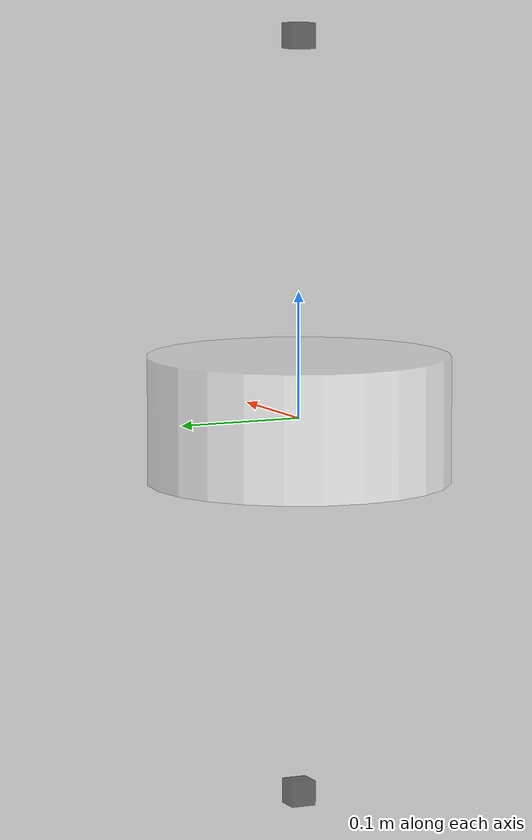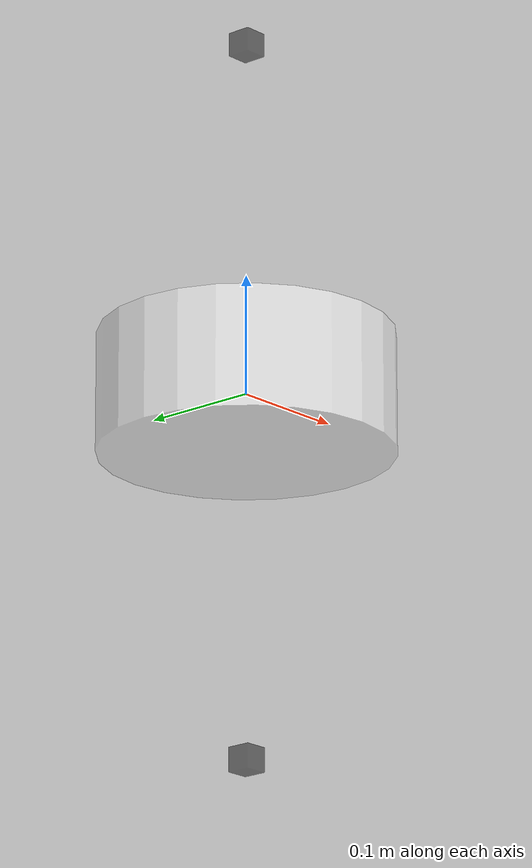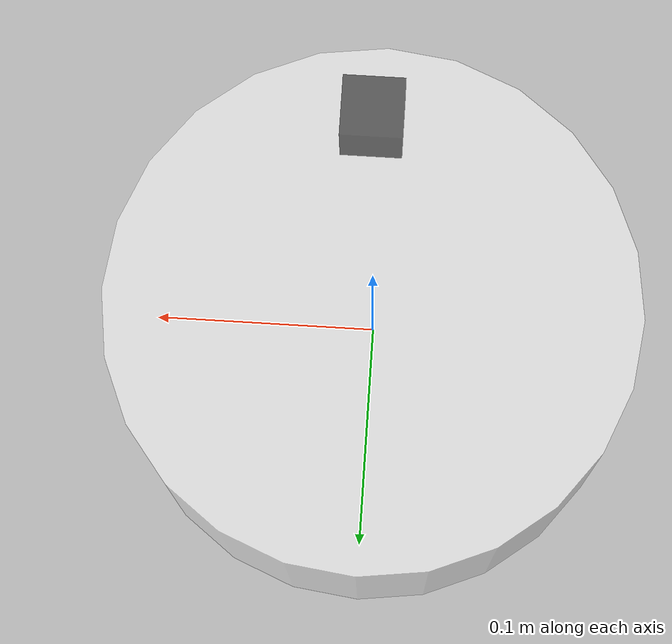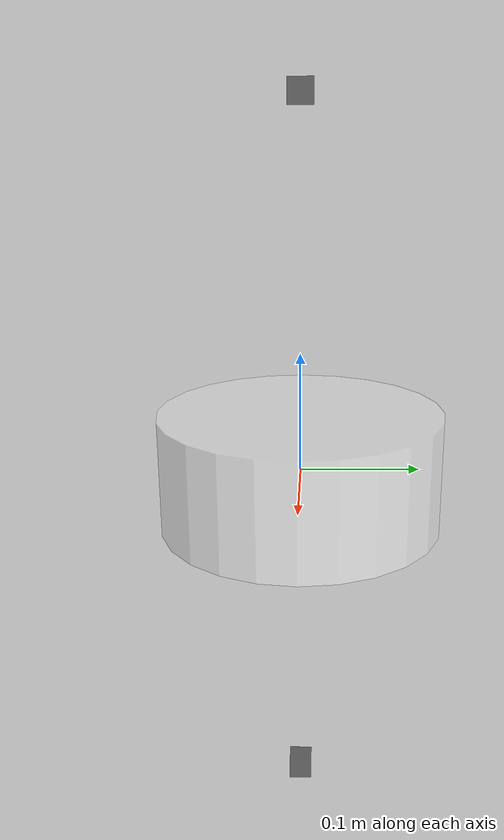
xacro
<?xml version="1.0"?>
<robot xmlns:xacro = 'http://www.ros.org/wiki/xacro' name="first_robot">
    <xacro:macro name="base_link" params = "radius length">
        <!-- 机器人底盘 -->
        <link name="base_link">
            <visual>
                <origin xyz="0.0 0.0 0.0" rpy="0.0 0.0 0.0"/>
                <geometry>
                    <cylinder radius="${radius}" length="${length}"/>
                 </geometry>
                <material name="white">
                    <color rgba="1.0 1.0 1.0 0.5"/>
                </material>
            </visual>
        </link>
    </xacro:macro >

    <xacro:macro name="imu_link" params = "imu_name xyz">
        <!-- IMU 模块 -->
        <link name="${imu_name}_link">
            <visual>
                <origin xyz="0.0 0.0 0.0" rpy="0.0 0.0 0.0"/>
                <geometry>
                    <box size="0.02 0.02 0.02"/>
                </geometry>
                <material name="black">
                    <color rgba="0.0 0.0 0.0 0.5"/>
                </material>
            </visual>
        </link>

        <!-- 固定关节连接 -->
        <joint name="${imu_name}_joint" type="fixed">
            <parent link="base_link"/>
            <child link="${imu_name}_link"/>
            <origin xyz="${xyz}" rpy="0.0 0.0 0.0"/>
        </joint>

    </xacro:macro>

    <xacro:base_link radius = "0.12" length = "0.1"></xacro:base_link>
    <xacro:imu_link imu_name = "imu_1" xyz = "0.0 0.0 0.3"></xacro:imu_link>
    <xacro:imu_link imu_name = "imu_2" xyz = "0.0 0.0 -0.3"></xacro:imu_link>

</robot>
